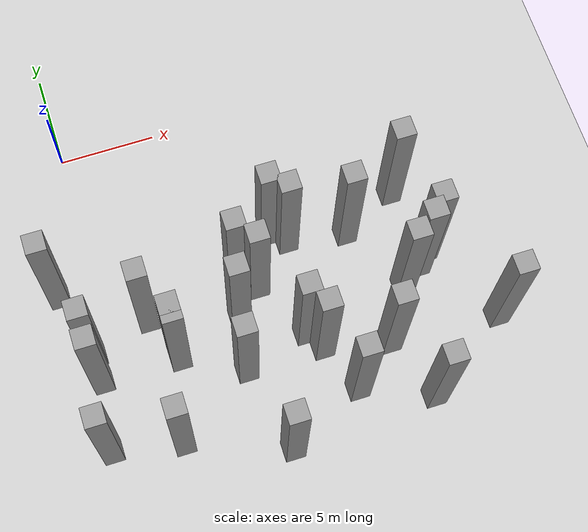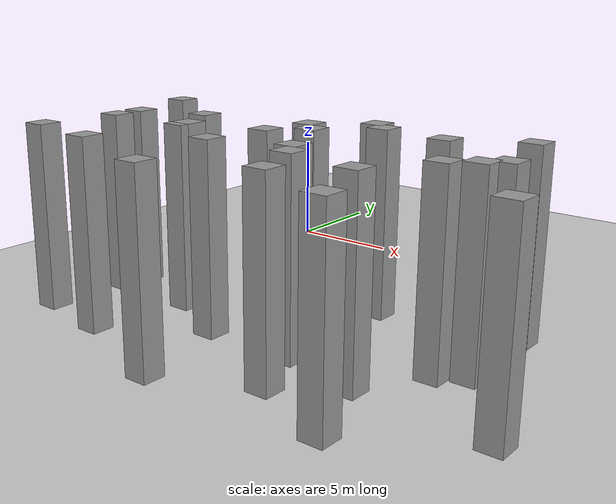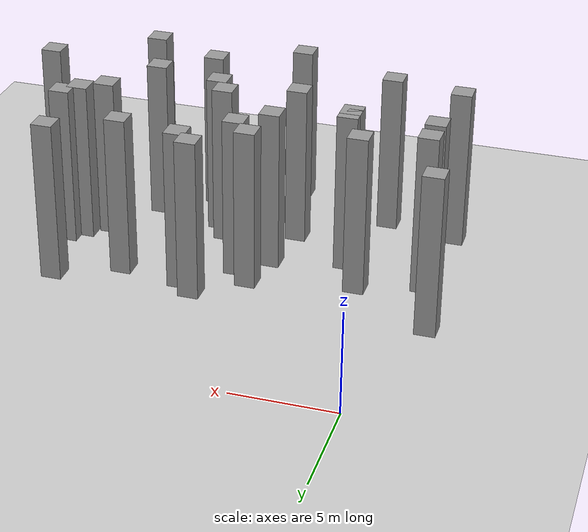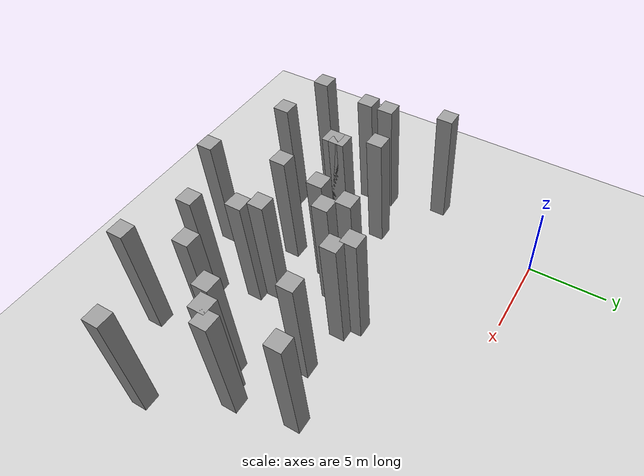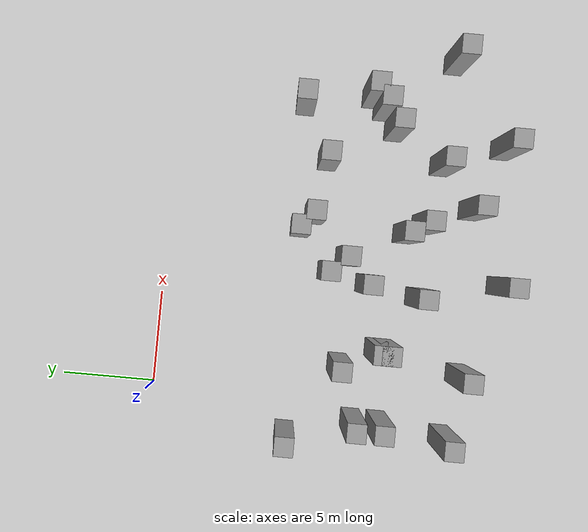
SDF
<sdf version="1.7">
 <world name="default">
  <model name="ground_plane">
   <static>1</static>
   <link name="link">
    <collision name="collision">
     <geometry><plane><normal>0 0 1</normal><size>100 100</size></plane></geometry>
     <surface>
      <contact><collide_bitmask>65535</collide_bitmask></contact>
      <friction><ode><mu>100</mu><mu2>50</mu2></ode></friction>
     </surface>
    </collision>
    <visual name="visual">
     <cast_shadows>0</cast_shadows>
     <geometry><plane><normal>0 0 1</normal><size>100 100</size></plane></geometry>
     <material>
      <script><uri>file://media/materials/scripts/gazebo.material</uri><name>Gazebo/Grey</name></script>
     </material>
    </visual>
   </link>
  </model>
  <model name="unit_box_static95_clone_25">
   <link name="link">
    <inertial>
     <mass>1</mass>
     <inertia>
      <ixx>0.166667</ixx>
      <ixy>0</ixy>
      <ixz>0</ixz>
      <iyy>0.166667</iyy>
      <iyz>0</iyz>
      <izz>0.166667</izz>
     </inertia>
    </inertial>
    <visual name="visual">
     <geometry><box><size>1 1 8</size></box></geometry>
     <material>
      <script><name>Gazebo/Grey</name><uri>file://media/materials/scripts/gazebo.material</uri></script>
      <shader type="pixel"/>
     </material>
    </visual>
    <collision name="collision">
     <geometry><box><size>1 1 8</size></box></geometry>
     <surface>
      <friction>
       <ode><mu>1</mu><mu2>1</mu2><fdir1>0 0 0</fdir1><slip1>0</slip1><slip2>0</slip2></ode>
       <torsional>
        <coefficient>1</coefficient>
        <patch_radius>0</patch_radius>
        <surface_radius>0</surface_radius>
        <use_patch_radius>1</use_patch_radius>
        <ode><slip>0</slip></ode>
       </torsional>
      </friction>
      <bounce><restitution_coefficient>0</restitution_coefficient><threshold>1e+06</threshold></bounce>
      <contact>
       <collide_without_contact>0</collide_without_contact>
       <collide_without_contact_bitmask>1</collide_without_contact_bitmask>
       <collide_bitmask>1</collide_bitmask>
       <ode>
        <soft_cfm>0</soft_cfm>
        <soft_erp>0.2</soft_erp>
        <kp>1e+13</kp>
        <kd>1</kd>
        <max_vel>0.01</max_vel>
        <min_depth>0</min_depth>
       </ode>
       <bullet>
        <split_impulse>1</split_impulse>
        <split_impulse_penetration_threshold>-0.01</split_impulse_penetration_threshold>
        <soft_cfm>0</soft_cfm>
        <soft_erp>0.2</soft_erp>
        <kp>1e+13</kp>
        <kd>1</kd>
       </bullet>
      </contact>
     </surface>
    </collision>
   </link>
   <static>1</static>
   <pose>16 -7 4 0 -0 0</pose>
  </model>
  <model name="unit_box_static95_clone_26">
   <link name="link">
    <inertial>
     <mass>1</mass>
     <inertia>
      <ixx>0.166667</ixx>
      <ixy>0</ixy>
      <ixz>0</ixz>
      <iyy>0.166667</iyy>
      <iyz>0</iyz>
      <izz>0.166667</izz>
     </inertia>
    </inertial>
    <visual name="visual">
     <geometry><box><size>1 1 8</size></box></geometry>
     <material>
      <script><name>Gazebo/Grey</name><uri>file://media/materials/scripts/gazebo.material</uri></script>
      <shader type="pixel"/>
     </material>
    </visual>
    <collision name="collision">
     <geometry><box><size>1 1 8</size></box></geometry>
     <surface>
      <friction>
       <ode><mu>1</mu><mu2>1</mu2><fdir1>0 0 0</fdir1><slip1>0</slip1><slip2>0</slip2></ode>
       <torsional>
        <coefficient>1</coefficient>
        <patch_radius>0</patch_radius>
        <surface_radius>0</surface_radius>
        <use_patch_radius>1</use_patch_radius>
        <ode><slip>0</slip></ode>
       </torsional>
      </friction>
      <bounce><restitution_coefficient>0</restitution_coefficient><threshold>1e+06</threshold></bounce>
      <contact>
       <collide_without_contact>0</collide_without_contact>
       <collide_without_contact_bitmask>1</collide_without_contact_bitmask>
       <collide_bitmask>1</collide_bitmask>
       <ode>
        <soft_cfm>0</soft_cfm>
        <soft_erp>0.2</soft_erp>
        <kp>1e+13</kp>
        <kd>1</kd>
        <max_vel>0.01</max_vel>
        <min_depth>0</min_depth>
       </ode>
       <bullet>
        <split_impulse>1</split_impulse>
        <split_impulse_penetration_threshold>-0.01</split_impulse_penetration_threshold>
        <soft_cfm>0</soft_cfm>
        <soft_erp>0.2</soft_erp>
        <kp>1e+13</kp>
        <kd>1</kd>
       </bullet>
      </contact>
     </surface>
    </collision>
   </link>
   <static>1</static>
   <pose>15 -12 4 0 -0 0</pose>
  </model>
  <model name="unit_box_static95_clone_27">
   <link name="link">
    <inertial>
     <mass>1</mass>
     <inertia>
      <ixx>0.166667</ixx>
      <ixy>0</ixy>
      <ixz>0</ixz>
      <iyy>0.166667</iyy>
      <iyz>0</iyz>
      <izz>0.166667</izz>
     </inertia>
    </inertial>
    <visual name="visual">
     <geometry><box><size>1 1 8</size></box></geometry>
     <material>
      <script><name>Gazebo/Grey</name><uri>file://media/materials/scripts/gazebo.material</uri></script>
      <shader type="pixel"/>
     </material>
    </visual>
    <collision name="collision">
     <geometry><box><size>1 1 8</size></box></geometry>
     <surface>
      <friction>
       <ode><mu>1</mu><mu2>1</mu2><fdir1>0 0 0</fdir1><slip1>0</slip1><slip2>0</slip2></ode>
       <torsional>
        <coefficient>1</coefficient>
        <patch_radius>0</patch_radius>
        <surface_radius>0</surface_radius>
        <use_patch_radius>1</use_patch_radius>
        <ode><slip>0</slip></ode>
       </torsional>
      </friction>
      <bounce><restitution_coefficient>0</restitution_coefficient><threshold>1e+06</threshold></bounce>
      <contact>
       <collide_without_contact>0</collide_without_contact>
       <collide_without_contact_bitmask>1</collide_without_contact_bitmask>
       <collide_bitmask>1</collide_bitmask>
       <ode>
        <soft_cfm>0</soft_cfm>
        <soft_erp>0.2</soft_erp>
        <kp>1e+13</kp>
        <kd>1</kd>
        <max_vel>0.01</max_vel>
        <min_depth>0</min_depth>
       </ode>
       <bullet>
        <split_impulse>1</split_impulse>
        <split_impulse_penetration_threshold>-0.01</split_impulse_penetration_threshold>
        <soft_cfm>0</soft_cfm>
        <soft_erp>0.2</soft_erp>
        <kp>1e+13</kp>
        <kd>1</kd>
       </bullet>
      </contact>
     </surface>
    </collision>
   </link>
   <static>1</static>
   <pose>10 -14 4 0 -0 0</pose>
  </model>
  <model name="unit_box_static95_clone_28">
   <link name="link">
    <inertial>
     <mass>1</mass>
     <inertia>
      <ixx>0.166667</ixx>
      <ixy>0</ixy>
      <ixz>0</ixz>
      <iyy>0.166667</iyy>
      <iyz>0</iyz>
      <izz>0.166667</izz>
     </inertia>
    </inertial>
    <visual name="visual">
     <geometry><box><size>1 1 8</size></box></geometry>
     <material>
      <script><name>Gazebo/Grey</name><uri>file://media/materials/scripts/gazebo.material</uri></script>
      <shader type="pixel"/>
     </material>
    </visual>
    <collision name="collision">
     <geometry><box><size>1 1 8</size></box></geometry>
     <surface>
      <friction>
       <ode><mu>1</mu><mu2>1</mu2><fdir1>0 0 0</fdir1><slip1>0</slip1><slip2>0</slip2></ode>
       <torsional>
        <coefficient>1</coefficient>
        <patch_radius>0</patch_radius>
        <surface_radius>0</surface_radius>
        <use_patch_radius>1</use_patch_radius>
        <ode><slip>0</slip></ode>
       </torsional>
      </friction>
      <bounce><restitution_coefficient>0</restitution_coefficient><threshold>1e+06</threshold></bounce>
      <contact>
       <collide_without_contact>0</collide_without_contact>
       <collide_without_contact_bitmask>1</collide_without_contact_bitmask>
       <collide_bitmask>1</collide_bitmask>
       <ode>
        <soft_cfm>0</soft_cfm>
        <soft_erp>0.2</soft_erp>
        <kp>1e+13</kp>
        <kd>1</kd>
        <max_vel>0.01</max_vel>
        <min_depth>0</min_depth>
       </ode>
       <bullet>
        <split_impulse>1</split_impulse>
        <split_impulse_penetration_threshold>-0.01</split_impulse_penetration_threshold>
        <soft_cfm>0</soft_cfm>
        <soft_erp>0.2</soft_erp>
        <kp>1e+13</kp>
        <kd>1</kd>
       </bullet>
      </contact>
     </surface>
    </collision>
   </link>
   <static>1</static>
   <pose>6 -14 4 0 -0 0</pose>
  </model>
  <model name="unit_box_static95_clone_29">
   <link name="link">
    <inertial>
     <mass>1</mass>
     <inertia>
      <ixx>0.166667</ixx>
      <ixy>0</ixy>
      <ixz>0</ixz>
      <iyy>0.166667</iyy>
      <iyz>0</iyz>
      <izz>0.166667</izz>
     </inertia>
    </inertial>
    <visual name="visual">
     <geometry><box><size>1 1 8</size></box></geometry>
     <material>
      <script><name>Gazebo/Grey</name><uri>file://media/materials/scripts/gazebo.material</uri></script>
      <shader type="pixel"/>
     </material>
    </visual>
    <collision name="collision">
     <geometry><box><size>1 1 8</size></box></geometry>
     <surface>
      <friction>
       <ode><mu>1</mu><mu2>1</mu2><fdir1>0 0 0</fdir1><slip1>0</slip1><slip2>0</slip2></ode>
       <torsional>
        <coefficient>1</coefficient>
        <patch_radius>0</patch_radius>
        <surface_radius>0</surface_radius>
        <use_patch_radius>1</use_patch_radius>
        <ode><slip>0</slip></ode>
       </torsional>
      </friction>
      <bounce><restitution_coefficient>0</restitution_coefficient><threshold>1e+06</threshold></bounce>
      <contact>
       <collide_without_contact>0</collide_without_contact>
       <collide_without_contact_bitmask>1</collide_without_contact_bitmask>
       <collide_bitmask>1</collide_bitmask>
       <ode>
        <soft_cfm>0</soft_cfm>
        <soft_erp>0.2</soft_erp>
        <kp>1e+13</kp>
        <kd>1</kd>
        <max_vel>0.01</max_vel>
        <min_depth>0</min_depth>
       </ode>
       <bullet>
        <split_impulse>1</split_impulse>
        <split_impulse_penetration_threshold>-0.01</split_impulse_penetration_threshold>
        <soft_cfm>0</soft_cfm>
        <soft_erp>0.2</soft_erp>
        <kp>1e+13</kp>
        <kd>1</kd>
       </bullet>
      </contact>
     </surface>
    </collision>
   </link>
   <static>1</static>
   <pose>3 -12.4205 4 0 -0 0</pose>
  </model>
  <model name="unit_box_static95_clone_30">
   <link name="link">
    <inertial>
     <mass>1</mass>
     <inertia>
      <ixx>0.166667</ixx>
      <ixy>0</ixy>
      <ixz>0</ixz>
      <iyy>0.166667</iyy>
      <iyz>0</iyz>
      <izz>0.166667</izz>
     </inertia>
    </inertial>
    <visual name="visual">
     <geometry><box><size>1 1 8</size></box></geometry>
     <material>
      <script><name>Gazebo/Grey</name><uri>file://media/materials/scripts/gazebo.material</uri></script>
      <shader type="pixel"/>
     </material>
    </visual>
    <collision name="collision">
     <geometry><box><size>1 1 8</size></box></geometry>
     <surface>
      <friction>
       <ode><mu>1</mu><mu2>1</mu2><fdir1>0 0 0</fdir1><slip1>0</slip1><slip2>0</slip2></ode>
       <torsional>
        <coefficient>1</coefficient>
        <patch_radius>0</patch_radius>
        <surface_radius>0</surface_radius>
        <use_patch_radius>1</use_patch_radius>
        <ode><slip>0</slip></ode>
       </torsional>
      </friction>
      <bounce><restitution_coefficient>0</restitution_coefficient><threshold>1e+06</threshold></bounce>
      <contact>
       <collide_without_contact>0</collide_without_contact>
       <collide_without_contact_bitmask>1</collide_without_contact_bitmask>
       <collide_bitmask>1</collide_bitmask>
       <ode>
        <soft_cfm>0</soft_cfm>
        <soft_erp>0.2</soft_erp>
        <kp>1e+13</kp>
        <kd>1</kd>
        <max_vel>0.01</max_vel>
        <min_depth>0</min_depth>
       </ode>
       <bullet>
        <split_impulse>1</split_impulse>
        <split_impulse_penetration_threshold>-0.01</split_impulse_penetration_threshold>
        <soft_cfm>0</soft_cfm>
        <soft_erp>0.2</soft_erp>
        <kp>1e+13</kp>
        <kd>1</kd>
       </bullet>
      </contact>
     </surface>
    </collision>
   </link>
   <static>1</static>
   <pose>-1 -11 4 0 -0 0</pose>
  </model>
  <model name="unit_box_static95_clone_57">
   <link name="link">
    <inertial>
     <mass>1</mass>
     <inertia>
      <ixx>0.166667</ixx>
      <ixy>0</ixy>
      <ixz>0</ixz>
      <iyy>0.166667</iyy>
      <iyz>0</iyz>
      <izz>0.166667</izz>
     </inertia>
    </inertial>
    <visual name="visual">
     <geometry><box><size>1 1 8</size></box></geometry>
     <material>
      <script><name>Gazebo/Grey</name><uri>file://media/materials/scripts/gazebo.material</uri></script>
      <shader type="pixel"/>
     </material>
    </visual>
    <collision name="collision">
     <geometry><box><size>1 1 8</size></box></geometry>
     <surface>
      <friction>
       <ode><mu>1</mu><mu2>1</mu2><fdir1>0 0 0</fdir1><slip1>0</slip1><slip2>0</slip2></ode>
       <torsional>
        <coefficient>1</coefficient>
        <patch_radius>0</patch_radius>
        <surface_radius>0</surface_radius>
        <use_patch_radius>1</use_patch_radius>
        <ode><slip>0</slip></ode>
       </torsional>
      </friction>
      <bounce><restitution_coefficient>0</restitution_coefficient><threshold>1e+06</threshold></bounce>
      <contact>
       <collide_without_contact>0</collide_without_contact>
       <collide_without_contact_bitmask>1</collide_without_contact_bitmask>
       <collide_bitmask>1</collide_bitmask>
       <ode>
        <soft_cfm>0</soft_cfm>
        <soft_erp>0.2</soft_erp>
        <kp>1e+13</kp>
        <kd>1</kd>
        <max_vel>0.01</max_vel>
        <min_depth>0</min_depth>
       </ode>
       <bullet>
        <split_impulse>1</split_impulse>
        <split_impulse_penetration_threshold>-0.01</split_impulse_penetration_threshold>
        <soft_cfm>0</soft_cfm>
        <soft_erp>0.2</soft_erp>
        <kp>1e+13</kp>
        <kd>1</kd>
       </bullet>
      </contact>
     </surface>
    </collision>
   </link>
   <static>1</static>
   <pose>7 -9 4 0 -0 0</pose>
  </model>
  <model name="unit_box_static95_clone_58">
   <link name="link">
    <inertial>
     <mass>1</mass>
     <inertia>
      <ixx>0.166667</ixx>
      <ixy>0</ixy>
      <ixz>0</ixz>
      <iyy>0.166667</iyy>
      <iyz>0</iyz>
      <izz>0.166667</izz>
     </inertia>
    </inertial>
    <visual name="visual">
     <geometry><box><size>1 1 8</size></box></geometry>
     <material>
      <script><name>Gazebo/Grey</name><uri>file://media/materials/scripts/gazebo.material</uri></script>
      <shader type="pixel"/>
     </material>
    </visual>
    <collision name="collision">
     <geometry><box><size>1 1 8</size></box></geometry>
     <surface>
      <friction>
       <ode><mu>1</mu><mu2>1</mu2><fdir1>0 0 0</fdir1><slip1>0</slip1><slip2>0</slip2></ode>
       <torsional>
        <coefficient>1</coefficient>
        <patch_radius>0</patch_radius>
        <surface_radius>0</surface_radius>
        <use_patch_radius>1</use_patch_radius>
        <ode><slip>0</slip></ode>
       </torsional>
      </friction>
      <bounce><restitution_coefficient>0</restitution_coefficient><threshold>1e+06</threshold></bounce>
      <contact>
       <collide_without_contact>0</collide_without_contact>
       <collide_without_contact_bitmask>1</collide_without_contact_bitmask>
       <collide_bitmask>1</collide_bitmask>
       <ode>
        <soft_cfm>0</soft_cfm>
        <soft_erp>0.2</soft_erp>
        <kp>1e+13</kp>
        <kd>1</kd>
        <max_vel>0.01</max_vel>
        <min_depth>0</min_depth>
       </ode>
       <bullet>
        <split_impulse>1</split_impulse>
        <split_impulse_penetration_threshold>-0.01</split_impulse_penetration_threshold>
        <soft_cfm>0</soft_cfm>
        <soft_erp>0.2</soft_erp>
        <kp>1e+13</kp>
        <kd>1</kd>
       </bullet>
      </contact>
     </surface>
    </collision>
   </link>
   <static>1</static>
   <pose>2 -10 4 0 -0 0</pose>
  </model>
  <model name="unit_box_static95_clone_59">
   <link name="link">
    <inertial>
     <mass>1</mass>
     <inertia>
      <ixx>0.166667</ixx>
      <ixy>0</ixy>
      <ixz>0</ixz>
      <iyy>0.166667</iyy>
      <iyz>0</iyz>
      <izz>0.166667</izz>
     </inertia>
    </inertial>
    <visual name="visual">
     <geometry><box><size>1 1 8</size></box></geometry>
     <material>
      <script><name>Gazebo/Grey</name><uri>file://media/materials/scripts/gazebo.material</uri></script>
      <shader type="pixel"/>
     </material>
    </visual>
    <collision name="collision">
     <geometry><box><size>1 1 8</size></box></geometry>
     <surface>
      <friction>
       <ode><mu>1</mu><mu2>1</mu2><fdir1>0 0 0</fdir1><slip1>0</slip1><slip2>0</slip2></ode>
       <torsional>
        <coefficient>1</coefficient>
        <patch_radius>0</patch_radius>
        <surface_radius>0</surface_radius>
        <use_patch_radius>1</use_patch_radius>
        <ode><slip>0</slip></ode>
       </torsional>
      </friction>
      <bounce><restitution_coefficient>0</restitution_coefficient><threshold>1e+06</threshold></bounce>
      <contact>
       <collide_without_contact>0</collide_without_contact>
       <collide_without_contact_bitmask>1</collide_without_contact_bitmask>
       <collide_bitmask>1</collide_bitmask>
       <ode>
        <soft_cfm>0</soft_cfm>
        <soft_erp>0.2</soft_erp>
        <kp>1e+13</kp>
        <kd>1</kd>
        <max_vel>0.01</max_vel>
        <min_depth>0</min_depth>
       </ode>
       <bullet>
        <split_impulse>1</split_impulse>
        <split_impulse_penetration_threshold>-0.01</split_impulse_penetration_threshold>
        <soft_cfm>0</soft_cfm>
        <soft_erp>0.2</soft_erp>
        <kp>1e+13</kp>
        <kd>1</kd>
       </bullet>
      </contact>
     </surface>
    </collision>
   </link>
   <static>1</static>
   <pose>-2 -7.41636 4 0 -0 0</pose>
  </model>
  <model name="unit_box_static95_clone_64">
   <link name="link">
    <inertial>
     <mass>1</mass>
     <inertia>
      <ixx>0.166667</ixx>
      <ixy>0</ixy>
      <ixz>0</ixz>
      <iyy>0.166667</iyy>
      <iyz>0</iyz>
      <izz>0.166667</izz>
     </inertia>
    </inertial>
    <visual name="visual">
     <geometry><box><size>1 1 8</size></box></geometry>
     <material>
      <script><name>Gazebo/Grey</name><uri>file://media/materials/scripts/gazebo.material</uri></script>
      <shader type="pixel"/>
     </material>
    </visual>
    <collision name="collision">
     <geometry><box><size>1 1 8</size></box></geometry>
     <surface>
      <friction>
       <ode><mu>1</mu><mu2>1</mu2><fdir1>0 0 0</fdir1><slip1>0</slip1><slip2>0</slip2></ode>
       <torsional>
        <coefficient>1</coefficient>
        <patch_radius>0</patch_radius>
        <surface_radius>0</surface_radius>
        <use_patch_radius>1</use_patch_radius>
        <ode><slip>0</slip></ode>
       </torsional>
      </friction>
      <bounce><restitution_coefficient>0</restitution_coefficient><threshold>1e+06</threshold></bounce>
      <contact>
       <collide_without_contact>0</collide_without_contact>
       <collide_without_contact_bitmask>1</collide_without_contact_bitmask>
       <collide_bitmask>1</collide_bitmask>
       <ode>
        <soft_cfm>0</soft_cfm>
        <soft_erp>0.2</soft_erp>
        <kp>1e+13</kp>
        <kd>1</kd>
        <max_vel>0.01</max_vel>
        <min_depth>0</min_depth>
       </ode>
       <bullet>
        <split_impulse>1</split_impulse>
        <split_impulse_penetration_threshold>-0.01</split_impulse_penetration_threshold>
        <soft_cfm>0</soft_cfm>
        <soft_erp>0.2</soft_erp>
        <kp>1e+13</kp>
        <kd>1</kd>
       </bullet>
      </contact>
     </surface>
    </collision>
   </link>
   <static>1</static>
   <pose>-1.46309 -15.9685 4 0 -0 0</pose>
  </model>
  <model name="unit_box_static95_clone_65">
   <link name="link">
    <inertial>
     <mass>1</mass>
     <inertia>
      <ixx>0.166667</ixx>
      <ixy>0</ixy>
      <ixz>0</ixz>
      <iyy>0.166667</iyy>
      <iyz>0</iyz>
      <izz>0.166667</izz>
     </inertia>
    </inertial>
    <visual name="visual">
     <geometry><box><size>1 1 8</size></box></geometry>
     <material>
      <script><name>Gazebo/Grey</name><uri>file://media/materials/scripts/gazebo.material</uri></script>
      <shader type="pixel"/>
     </material>
    </visual>
    <collision name="collision">
     <geometry><box><size>1 1 8</size></box></geometry>
     <surface>
      <friction>
       <ode><mu>1</mu><mu2>1</mu2><fdir1>0 0 0</fdir1><slip1>0</slip1><slip2>0</slip2></ode>
       <torsional>
        <coefficient>1</coefficient>
        <patch_radius>0</patch_radius>
        <surface_radius>0</surface_radius>
        <use_patch_radius>1</use_patch_radius>
        <ode><slip>0</slip></ode>
       </torsional>
      </friction>
      <bounce><restitution_coefficient>0</restitution_coefficient><threshold>1e+06</threshold></bounce>
      <contact>
       <collide_without_contact>0</collide_without_contact>
       <collide_without_contact_bitmask>1</collide_without_contact_bitmask>
       <collide_bitmask>1</collide_bitmask>
       <ode>
        <soft_cfm>0</soft_cfm>
        <soft_erp>0.2</soft_erp>
        <kp>1e+13</kp>
        <kd>1</kd>
        <max_vel>0.01</max_vel>
        <min_depth>0</min_depth>
       </ode>
       <bullet>
        <split_impulse>1</split_impulse>
        <split_impulse_penetration_threshold>-0.01</split_impulse_penetration_threshold>
        <soft_cfm>0</soft_cfm>
        <soft_erp>0.2</soft_erp>
        <kp>1e+13</kp>
        <kd>1</kd>
       </bullet>
      </contact>
     </surface>
    </collision>
   </link>
   <static>1</static>
   <pose>2 -16.6149 4 0 -0 0</pose>
  </model>
  <model name="unit_box_static95_clone_66">
   <link name="link">
    <inertial>
     <mass>1</mass>
     <inertia>
      <ixx>0.166667</ixx>
      <ixy>0</ixy>
      <ixz>0</ixz>
      <iyy>0.166667</iyy>
      <iyz>0</iyz>
      <izz>0.166667</izz>
     </inertia>
    </inertial>
    <visual name="visual">
     <geometry><box><size>1 1 8</size></box></geometry>
     <material>
      <script><name>Gazebo/Grey</name><uri>file://media/materials/scripts/gazebo.material</uri></script>
      <shader type="pixel"/>
     </material>
    </visual>
    <collision name="collision">
     <geometry><box><size>1 1 8</size></box></geometry>
     <surface>
      <friction>
       <ode><mu>1</mu><mu2>1</mu2><fdir1>0 0 0</fdir1><slip1>0</slip1><slip2>0</slip2></ode>
       <torsional>
        <coefficient>1</coefficient>
        <patch_radius>0</patch_radius>
        <surface_radius>0</surface_radius>
        <use_patch_radius>1</use_patch_radius>
        <ode><slip>0</slip></ode>
       </torsional>
      </friction>
      <bounce><restitution_coefficient>0</restitution_coefficient><threshold>1e+06</threshold></bounce>
      <contact>
       <collide_without_contact>0</collide_without_contact>
       <collide_without_contact_bitmask>1</collide_without_contact_bitmask>
       <collide_bitmask>1</collide_bitmask>
       <ode>
        <soft_cfm>0</soft_cfm>
        <soft_erp>0.2</soft_erp>
        <kp>1e+13</kp>
        <kd>1</kd>
        <max_vel>0.01</max_vel>
        <min_depth>0</min_depth>
       </ode>
       <bullet>
        <split_impulse>1</split_impulse>
        <split_impulse_penetration_threshold>-0.01</split_impulse_penetration_threshold>
        <soft_cfm>0</soft_cfm>
        <soft_erp>0.2</soft_erp>
        <kp>1e+13</kp>
        <kd>1</kd>
       </bullet>
      </contact>
     </surface>
    </collision>
   </link>
   <static>1</static>
   <pose>7 -18.4596 4 0 -0 0</pose>
  </model>
  <model name="unit_box_static95_clone_67">
   <link name="link">
    <inertial>
     <mass>1</mass>
     <inertia>
      <ixx>0.166667</ixx>
      <ixy>0</ixy>
      <ixz>0</ixz>
      <iyy>0.166667</iyy>
      <iyz>0</iyz>
      <izz>0.166667</izz>
     </inertia>
    </inertial>
    <visual name="visual">
     <geometry><box><size>1 1 8</size></box></geometry>
     <material>
      <script><name>Gazebo/Grey</name><uri>file://media/materials/scripts/gazebo.material</uri></script>
      <shader type="pixel"/>
     </material>
    </visual>
    <collision name="collision">
     <geometry><box><size>1 1 8</size></box></geometry>
     <surface>
      <friction>
       <ode><mu>1</mu><mu2>1</mu2><fdir1>0 0 0</fdir1><slip1>0</slip1><slip2>0</slip2></ode>
       <torsional>
        <coefficient>1</coefficient>
        <patch_radius>0</patch_radius>
        <surface_radius>0</surface_radius>
        <use_patch_radius>1</use_patch_radius>
        <ode><slip>0</slip></ode>
       </torsional>
      </friction>
      <bounce><restitution_coefficient>0</restitution_coefficient><threshold>1e+06</threshold></bounce>
      <contact>
       <collide_without_contact>0</collide_without_contact>
       <collide_without_contact_bitmask>1</collide_without_contact_bitmask>
       <collide_bitmask>1</collide_bitmask>
       <ode>
        <soft_cfm>0</soft_cfm>
        <soft_erp>0.2</soft_erp>
        <kp>1e+13</kp>
        <kd>1</kd>
        <max_vel>0.01</max_vel>
        <min_depth>0</min_depth>
       </ode>
       <bullet>
        <split_impulse>1</split_impulse>
        <split_impulse_penetration_threshold>-0.01</split_impulse_penetration_threshold>
        <soft_cfm>0</soft_cfm>
        <soft_erp>0.2</soft_erp>
        <kp>1e+13</kp>
        <kd>1</kd>
       </bullet>
      </contact>
     </surface>
    </collision>
   </link>
   <static>1</static>
   <pose>11 -16.5289 4 0 -0 0</pose>
  </model>
  <model name="unit_box_static95_clone_68">
   <link name="link">
    <inertial>
     <mass>1</mass>
     <inertia>
      <ixx>0.166667</ixx>
      <ixy>0</ixy>
      <ixz>0</ixz>
      <iyy>0.166667</iyy>
      <iyz>0</iyz>
      <izz>0.166667</izz>
     </inertia>
    </inertial>
    <visual name="visual">
     <geometry><box><size>1 1 8</size></box></geometry>
     <material>
      <script><name>Gazebo/Grey</name><uri>file://media/materials/scripts/gazebo.material</uri></script>
      <shader type="pixel"/>
     </material>
    </visual>
    <collision name="collision">
     <geometry><box><size>1 1 8</size></box></geometry>
     <surface>
      <friction>
       <ode><mu>1</mu><mu2>1</mu2><fdir1>0 0 0</fdir1><slip1>0</slip1><slip2>0</slip2></ode>
       <torsional>
        <coefficient>1</coefficient>
        <patch_radius>0</patch_radius>
        <surface_radius>0</surface_radius>
        <use_patch_radius>1</use_patch_radius>
        <ode><slip>0</slip></ode>
       </torsional>
      </friction>
      <bounce><restitution_coefficient>0</restitution_coefficient><threshold>1e+06</threshold></bounce>
      <contact>
       <collide_without_contact>0</collide_without_contact>
       <collide_without_contact_bitmask>1</collide_without_contact_bitmask>
       <collide_bitmask>1</collide_bitmask>
       <ode>
        <soft_cfm>0</soft_cfm>
        <soft_erp>0.2</soft_erp>
        <kp>1e+13</kp>
        <kd>1</kd>
        <max_vel>0.01</max_vel>
        <min_depth>0</min_depth>
       </ode>
       <bullet>
        <split_impulse>1</split_impulse>
        <split_impulse_penetration_threshold>-0.01</split_impulse_penetration_threshold>
        <soft_cfm>0</soft_cfm>
        <soft_erp>0.2</soft_erp>
        <kp>1e+13</kp>
        <kd>1</kd>
       </bullet>
      </contact>
     </surface>
    </collision>
   </link>
   <static>1</static>
   <pose>14.513 -18 4 0 -0 0</pose>
  </model>
  <model name="unit_box_static95_clone_69">
   <link name="link">
    <inertial>
     <mass>1</mass>
     <inertia>
      <ixx>0.166667</ixx>
      <ixy>0</ixy>
      <ixz>0</ixz>
      <iyy>0.166667</iyy>
      <iyz>0</iyz>
      <izz>0.166667</izz>
     </inertia>
    </inertial>
    <visual name="visual">
     <geometry><box><size>1 1 8</size></box></geometry>
     <material>
      <script><name>Gazebo/Grey</name><uri>file://media/materials/scripts/gazebo.material</uri></script>
      <shader type="pixel"/>
     </material>
    </visual>
    <collision name="collision">
     <geometry><box><size>1 1 8</size></box></geometry>
     <surface>
      <friction>
       <ode><mu>1</mu><mu2>1</mu2><fdir1>0 0 0</fdir1><slip1>0</slip1><slip2>0</slip2></ode>
       <torsional>
        <coefficient>1</coefficient>
        <patch_radius>0</patch_radius>
        <surface_radius>0</surface_radius>
        <use_patch_radius>1</use_patch_radius>
        <ode><slip>0</slip></ode>
       </torsional>
      </friction>
      <bounce><restitution_coefficient>0</restitution_coefficient><threshold>1e+06</threshold></bounce>
      <contact>
       <collide_without_contact>0</collide_without_contact>
       <collide_without_contact_bitmask>1</collide_without_contact_bitmask>
       <collide_bitmask>1</collide_bitmask>
       <ode>
        <soft_cfm>0</soft_cfm>
        <soft_erp>0.2</soft_erp>
        <kp>1e+13</kp>
        <kd>1</kd>
        <max_vel>0.01</max_vel>
        <min_depth>0</min_depth>
       </ode>
       <bullet>
        <split_impulse>1</split_impulse>
        <split_impulse_penetration_threshold>-0.01</split_impulse_penetration_threshold>
        <soft_cfm>0</soft_cfm>
        <soft_erp>0.2</soft_erp>
        <kp>1e+13</kp>
        <kd>1</kd>
       </bullet>
      </contact>
     </surface>
    </collision>
   </link>
   <static>1</static>
   <pose>19 -15 4 0 -0 0</pose>
  </model>
  <model name="unit_box_static95_clone_84">
   <link name="link">
    <inertial>
     <mass>1</mass>
     <inertia>
      <ixx>0.166667</ixx>
      <ixy>0</ixy>
      <ixz>0</ixz>
      <iyy>0.166667</iyy>
      <iyz>0</iyz>
      <izz>0.166667</izz>
     </inertia>
    </inertial>
    <visual name="visual">
     <geometry><box><size>1 1 8</size></box></geometry>
     <material>
      <script><name>Gazebo/Grey</name><uri>file://media/materials/scripts/gazebo.material</uri></script>
      <shader type="pixel"/>
     </material>
    </visual>
    <collision name="collision">
     <geometry><box><size>1 1 8</size></box></geometry>
     <surface>
      <friction>
       <ode><mu>1</mu><mu2>1</mu2><fdir1>0 0 0</fdir1><slip1>0</slip1><slip2>0</slip2></ode>
       <torsional>
        <coefficient>1</coefficient>
        <patch_radius>0</patch_radius>
        <surface_radius>0</surface_radius>
        <use_patch_radius>1</use_patch_radius>
        <ode><slip>0</slip></ode>
       </torsional>
      </friction>
      <bounce><restitution_coefficient>0</restitution_coefficient><threshold>1e+06</threshold></bounce>
      <contact>
       <collide_without_contact>0</collide_without_contact>
       <collide_without_contact_bitmask>1</collide_without_contact_bitmask>
       <collide_bitmask>1</collide_bitmask>
       <ode>
        <soft_cfm>0</soft_cfm>
        <soft_erp>0.2</soft_erp>
        <kp>1e+13</kp>
        <kd>1</kd>
        <max_vel>0.01</max_vel>
        <min_depth>0</min_depth>
       </ode>
       <bullet>
        <split_impulse>1</split_impulse>
        <split_impulse_penetration_threshold>-0.01</split_impulse_penetration_threshold>
        <soft_cfm>0</soft_cfm>
        <soft_erp>0.2</soft_erp>
        <kp>1e+13</kp>
        <kd>1</kd>
       </bullet>
      </contact>
     </surface>
    </collision>
   </link>
   <static>1</static>
   <pose>-1 -12.415 4 0 -0 0</pose>
  </model>
  <model name="unit_box_static95_clone_85">
   <link name="link">
    <inertial>
     <mass>1</mass>
     <inertia>
      <ixx>0.166667</ixx>
      <ixy>0</ixy>
      <ixz>0</ixz>
      <iyy>0.166667</iyy>
      <iyz>0</iyz>
      <izz>0.166667</izz>
     </inertia>
    </inertial>
    <visual name="visual">
     <geometry><box><size>1 1 8</size></box></geometry>
     <material>
      <script><name>Gazebo/Grey</name><uri>file://media/materials/scripts/gazebo.material</uri></script>
      <shader type="pixel"/>
     </material>
    </visual>
    <collision name="collision">
     <geometry><box><size>1 1 8</size></box></geometry>
     <surface>
      <friction>
       <ode><mu>1</mu><mu2>1</mu2><fdir1>0 0 0</fdir1><slip1>0</slip1><slip2>0</slip2></ode>
       <torsional>
        <coefficient>1</coefficient>
        <patch_radius>0</patch_radius>
        <surface_radius>0</surface_radius>
        <use_patch_radius>1</use_patch_radius>
        <ode><slip>0</slip></ode>
       </torsional>
      </friction>
      <bounce><restitution_coefficient>0</restitution_coefficient><threshold>1e+06</threshold></bounce>
      <contact>
       <collide_without_contact>0</collide_without_contact>
       <collide_without_contact_bitmask>1</collide_without_contact_bitmask>
       <collide_bitmask>1</collide_bitmask>
       <ode>
        <soft_cfm>0</soft_cfm>
        <soft_erp>0.2</soft_erp>
        <kp>1e+13</kp>
        <kd>1</kd>
        <max_vel>0.01</max_vel>
        <min_depth>0</min_depth>
       </ode>
       <bullet>
        <split_impulse>1</split_impulse>
        <split_impulse_penetration_threshold>-0.01</split_impulse_penetration_threshold>
        <soft_cfm>0</soft_cfm>
        <soft_erp>0.2</soft_erp>
        <kp>1e+13</kp>
        <kd>1</kd>
       </bullet>
      </contact>
     </surface>
    </collision>
   </link>
   <static>1</static>
   <pose>3 -12 4 0 -0 0</pose>
  </model>
  <model name="unit_box_static95_clone_86">
   <link name="link">
    <inertial>
     <mass>1</mass>
     <inertia>
      <ixx>0.166667</ixx>
      <ixy>0</ixy>
      <ixz>0</ixz>
      <iyy>0.166667</iyy>
      <iyz>0</iyz>
      <izz>0.166667</izz>
     </inertia>
    </inertial>
    <visual name="visual">
     <geometry><box><size>1 1 8</size></box></geometry>
     <material>
      <script><name>Gazebo/Grey</name><uri>file://media/materials/scripts/gazebo.material</uri></script>
      <shader type="pixel"/>
     </material>
    </visual>
    <collision name="collision">
     <geometry><box><size>1 1 8</size></box></geometry>
     <surface>
      <friction>
       <ode><mu>1</mu><mu2>1</mu2><fdir1>0 0 0</fdir1><slip1>0</slip1><slip2>0</slip2></ode>
       <torsional>
        <coefficient>1</coefficient>
        <patch_radius>0</patch_radius>
        <surface_radius>0</surface_radius>
        <use_patch_radius>1</use_patch_radius>
        <ode><slip>0</slip></ode>
       </torsional>
      </friction>
      <bounce><restitution_coefficient>0</restitution_coefficient><threshold>1e+06</threshold></bounce>
      <contact>
       <collide_without_contact>0</collide_without_contact>
       <collide_without_contact_bitmask>1</collide_without_contact_bitmask>
       <collide_bitmask>1</collide_bitmask>
       <ode>
        <soft_cfm>0</soft_cfm>
        <soft_erp>0.2</soft_erp>
        <kp>1e+13</kp>
        <kd>1</kd>
        <max_vel>0.01</max_vel>
        <min_depth>0</min_depth>
       </ode>
       <bullet>
        <split_impulse>1</split_impulse>
        <split_impulse_penetration_threshold>-0.01</split_impulse_penetration_threshold>
        <soft_cfm>0</soft_cfm>
        <soft_erp>0.2</soft_erp>
        <kp>1e+13</kp>
        <kd>1</kd>
       </bullet>
      </contact>
     </surface>
    </collision>
   </link>
   <static>1</static>
   <pose>10 -8 4 0 -0 0</pose>
  </model>
  <model name="unit_box_static95_clone_103">
   <link name="link">
    <inertial>
     <mass>1</mass>
     <inertia>
      <ixx>0.166667</ixx>
      <ixy>0</ixy>
      <ixz>0</ixz>
      <iyy>0.166667</iyy>
      <iyz>0</iyz>
      <izz>0.166667</izz>
     </inertia>
    </inertial>
    <visual name="visual">
     <geometry><box><size>1 1 8</size></box></geometry>
     <material>
      <script><name>Gazebo/Grey</name><uri>file://media/materials/scripts/gazebo.material</uri></script>
      <shader type="pixel"/>
     </material>
    </visual>
    <collision name="collision">
     <geometry><box><size>1 1 8</size></box></geometry>
     <surface>
      <friction>
       <ode><mu>1</mu><mu2>1</mu2><fdir1>0 0 0</fdir1><slip1>0</slip1><slip2>0</slip2></ode>
       <torsional>
        <coefficient>1</coefficient>
        <patch_radius>0</patch_radius>
        <surface_radius>0</surface_radius>
        <use_patch_radius>1</use_patch_radius>
        <ode><slip>0</slip></ode>
       </torsional>
      </friction>
      <bounce><restitution_coefficient>0</restitution_coefficient><threshold>1e+06</threshold></bounce>
      <contact>
       <collide_without_contact>0</collide_without_contact>
       <collide_without_contact_bitmask>1</collide_without_contact_bitmask>
       <collide_bitmask>1</collide_bitmask>
       <ode>
        <soft_cfm>0</soft_cfm>
        <soft_erp>0.2</soft_erp>
        <kp>1e+13</kp>
        <kd>1</kd>
        <max_vel>0.01</max_vel>
        <min_depth>0</min_depth>
       </ode>
       <bullet>
        <split_impulse>1</split_impulse>
        <split_impulse_penetration_threshold>-0.01</split_impulse_penetration_threshold>
        <soft_cfm>0</soft_cfm>
        <soft_erp>0.2</soft_erp>
        <kp>1e+13</kp>
        <kd>1</kd>
       </bullet>
      </contact>
     </surface>
    </collision>
   </link>
   <static>1</static>
   <pose>13.0425 -8.47043 4 0 -0 0</pose>
  </model>
  <model name="unit_box_static95_clone_117">
   <link name="link">
    <inertial>
     <mass>1</mass>
     <inertia>
      <ixx>0.166667</ixx>
      <ixy>0</ixy>
      <ixz>0</ixz>
      <iyy>0.166667</iyy>
      <iyz>0</iyz>
      <izz>0.166667</izz>
     </inertia>
    </inertial>
    <visual name="visual">
     <geometry><box><size>1 1 8</size></box></geometry>
     <material>
      <script><name>Gazebo/Grey</name><uri>file://media/materials/scripts/gazebo.material</uri></script>
      <shader type="pixel"/>
     </material>
    </visual>
    <collision name="collision">
     <geometry><box><size>1 1 8</size></box></geometry>
     <surface>
      <friction>
       <ode><mu>1</mu><mu2>1</mu2><fdir1>0 0 0</fdir1><slip1>0</slip1><slip2>0</slip2></ode>
       <torsional>
        <coefficient>1</coefficient>
        <patch_radius>0</patch_radius>
        <surface_radius>0</surface_radius>
        <use_patch_radius>1</use_patch_radius>
        <ode><slip>0</slip></ode>
       </torsional>
      </friction>
      <bounce><restitution_coefficient>0</restitution_coefficient><threshold>1e+06</threshold></bounce>
      <contact>
       <collide_without_contact>0</collide_without_contact>
       <collide_without_contact_bitmask>1</collide_without_contact_bitmask>
       <collide_bitmask>1</collide_bitmask>
       <ode>
        <soft_cfm>0</soft_cfm>
        <soft_erp>0.2</soft_erp>
        <kp>1e+13</kp>
        <kd>1</kd>
        <max_vel>0.01</max_vel>
        <min_depth>0</min_depth>
       </ode>
       <bullet>
        <split_impulse>1</split_impulse>
        <split_impulse_penetration_threshold>-0.01</split_impulse_penetration_threshold>
        <soft_cfm>0</soft_cfm>
        <soft_erp>0.2</soft_erp>
        <kp>1e+13</kp>
        <kd>1</kd>
       </bullet>
      </contact>
     </surface>
    </collision>
   </link>
   <static>1</static>
   <pose>9.21617 -7.28954 4 0 -0 0</pose>
  </model>
  <model name="unit_box_static95_clone_118">
   <link name="link">
    <inertial>
     <mass>1</mass>
     <inertia>
      <ixx>0.166667</ixx>
      <ixy>0</ixy>
      <ixz>0</ixz>
      <iyy>0.166667</iyy>
      <iyz>0</iyz>
      <izz>0.166667</izz>
     </inertia>
    </inertial>
    <visual name="visual">
     <geometry><box><size>1 1 8</size></box></geometry>
     <material>
      <script><name>Gazebo/Grey</name><uri>file://media/materials/scripts/gazebo.material</uri></script>
      <shader type="pixel"/>
     </material>
    </visual>
    <collision name="collision">
     <geometry><box><size>1 1 8</size></box></geometry>
     <surface>
      <friction>
       <ode><mu>1</mu><mu2>1</mu2><fdir1>0 0 0</fdir1><slip1>0</slip1><slip2>0</slip2></ode>
       <torsional>
        <coefficient>1</coefficient>
        <patch_radius>0</patch_radius>
        <surface_radius>0</surface_radius>
        <use_patch_radius>1</use_patch_radius>
        <ode><slip>0</slip></ode>
       </torsional>
      </friction>
      <bounce><restitution_coefficient>0</restitution_coefficient><threshold>1e+06</threshold></bounce>
      <contact>
       <collide_without_contact>0</collide_without_contact>
       <collide_without_contact_bitmask>1</collide_without_contact_bitmask>
       <collide_bitmask>1</collide_bitmask>
       <ode>
        <soft_cfm>0</soft_cfm>
        <soft_erp>0.2</soft_erp>
        <kp>1e+13</kp>
        <kd>1</kd>
        <max_vel>0.01</max_vel>
        <min_depth>0</min_depth>
       </ode>
       <bullet>
        <split_impulse>1</split_impulse>
        <split_impulse_penetration_threshold>-0.01</split_impulse_penetration_threshold>
        <soft_cfm>0</soft_cfm>
        <soft_erp>0.2</soft_erp>
        <kp>1e+13</kp>
        <kd>1</kd>
       </bullet>
      </contact>
     </surface>
    </collision>
   </link>
   <static>1</static>
   <pose>9.38289 -12.9973 4 0 -0 0</pose>
  </model>
  <model name="unit_box_static95_clone_119">
   <link name="link">
    <inertial>
     <mass>1</mass>
     <inertia>
      <ixx>0.166667</ixx>
      <ixy>0</ixy>
      <ixz>0</ixz>
      <iyy>0.166667</iyy>
      <iyz>0</iyz>
      <izz>0.166667</izz>
     </inertia>
    </inertial>
    <visual name="visual">
     <geometry><box><size>1 1 8</size></box></geometry>
     <material>
      <script><name>Gazebo/Grey</name><uri>file://media/materials/scripts/gazebo.material</uri></script>
      <shader type="pixel"/>
     </material>
    </visual>
    <collision name="collision">
     <geometry><box><size>1 1 8</size></box></geometry>
     <surface>
      <friction>
       <ode><mu>1</mu><mu2>1</mu2><fdir1>0 0 0</fdir1><slip1>0</slip1><slip2>0</slip2></ode>
       <torsional>
        <coefficient>1</coefficient>
        <patch_radius>0</patch_radius>
        <surface_radius>0</surface_radius>
        <use_patch_radius>1</use_patch_radius>
        <ode><slip>0</slip></ode>
       </torsional>
      </friction>
      <bounce><restitution_coefficient>0</restitution_coefficient><threshold>1e+06</threshold></bounce>
      <contact>
       <collide_without_contact>0</collide_without_contact>
       <collide_without_contact_bitmask>1</collide_without_contact_bitmask>
       <collide_bitmask>1</collide_bitmask>
       <ode>
        <soft_cfm>0</soft_cfm>
        <soft_erp>0.2</soft_erp>
        <kp>1e+13</kp>
        <kd>1</kd>
        <max_vel>0.01</max_vel>
        <min_depth>0</min_depth>
       </ode>
       <bullet>
        <split_impulse>1</split_impulse>
        <split_impulse_penetration_threshold>-0.01</split_impulse_penetration_threshold>
        <soft_cfm>0</soft_cfm>
        <soft_erp>0.2</soft_erp>
        <kp>1e+13</kp>
        <kd>1</kd>
       </bullet>
      </contact>
     </surface>
    </collision>
   </link>
   <static>1</static>
   <pose>7.8495 -9.93054 4 0 -0 0</pose>
  </model>
  <model name="unit_box_static95_clone_120">
   <link name="link">
    <inertial>
     <mass>1</mass>
     <inertia>
      <ixx>0.166667</ixx>
      <ixy>0</ixy>
      <ixz>0</ixz>
      <iyy>0.166667</iyy>
      <iyz>0</iyz>
      <izz>0.166667</izz>
     </inertia>
    </inertial>
    <visual name="visual">
     <geometry><box><size>1 1 8</size></box></geometry>
     <material>
      <script><name>Gazebo/Grey</name><uri>file://media/materials/scripts/gazebo.material</uri></script>
      <shader type="pixel"/>
     </material>
    </visual>
    <collision name="collision">
     <geometry><box><size>1 1 8</size></box></geometry>
     <surface>
      <friction>
       <ode><mu>1</mu><mu2>1</mu2><fdir1>0 0 0</fdir1><slip1>0</slip1><slip2>0</slip2></ode>
       <torsional>
        <coefficient>1</coefficient>
        <patch_radius>0</patch_radius>
        <surface_radius>0</surface_radius>
        <use_patch_radius>1</use_patch_radius>
        <ode><slip>0</slip></ode>
       </torsional>
      </friction>
      <bounce><restitution_coefficient>0</restitution_coefficient><threshold>1e+06</threshold></bounce>
      <contact>
       <collide_without_contact>0</collide_without_contact>
       <collide_without_contact_bitmask>1</collide_without_contact_bitmask>
       <collide_bitmask>1</collide_bitmask>
       <ode>
        <soft_cfm>0</soft_cfm>
        <soft_erp>0.2</soft_erp>
        <kp>1e+13</kp>
        <kd>1</kd>
        <max_vel>0.01</max_vel>
        <min_depth>0</min_depth>
       </ode>
       <bullet>
        <split_impulse>1</split_impulse>
        <split_impulse_penetration_threshold>-0.01</split_impulse_penetration_threshold>
        <soft_cfm>0</soft_cfm>
        <soft_erp>0.2</soft_erp>
        <kp>1e+13</kp>
        <kd>1</kd>
       </bullet>
      </contact>
     </surface>
    </collision>
   </link>
   <static>1</static>
   <pose>6.49423 -11.1719 4 0 -0 0</pose>
  </model>
  <model name="unit_box_static95_clone_121">
   <link name="link">
    <inertial>
     <mass>1</mass>
     <inertia>
      <ixx>0.166667</ixx>
      <ixy>0</ixy>
      <ixz>0</ixz>
      <iyy>0.166667</iyy>
      <iyz>0</iyz>
      <izz>0.166667</izz>
     </inertia>
    </inertial>
    <visual name="visual">
     <geometry><box><size>1 1 8</size></box></geometry>
     <material>
      <script><name>Gazebo/Grey</name><uri>file://media/materials/scripts/gazebo.material</uri></script>
      <shader type="pixel"/>
     </material>
    </visual>
    <collision name="collision">
     <geometry><box><size>1 1 8</size></box></geometry>
     <surface>
      <friction>
       <ode><mu>1</mu><mu2>1</mu2><fdir1>0 0 0</fdir1><slip1>0</slip1><slip2>0</slip2></ode>
       <torsional>
        <coefficient>1</coefficient>
        <patch_radius>0</patch_radius>
        <surface_radius>0</surface_radius>
        <use_patch_radius>1</use_patch_radius>
        <ode><slip>0</slip></ode>
       </torsional>
      </friction>
      <bounce><restitution_coefficient>0</restitution_coefficient><threshold>1e+06</threshold></bounce>
      <contact>
       <collide_without_contact>0</collide_without_contact>
       <collide_without_contact_bitmask>1</collide_without_contact_bitmask>
       <collide_bitmask>1</collide_bitmask>
       <ode>
        <soft_cfm>0</soft_cfm>
        <soft_erp>0.2</soft_erp>
        <kp>1e+13</kp>
        <kd>1</kd>
        <max_vel>0.01</max_vel>
        <min_depth>0</min_depth>
       </ode>
       <bullet>
        <split_impulse>1</split_impulse>
        <split_impulse_penetration_threshold>-0.01</split_impulse_penetration_threshold>
        <soft_cfm>0</soft_cfm>
        <soft_erp>0.2</soft_erp>
        <kp>1e+13</kp>
        <kd>1</kd>
       </bullet>
      </contact>
     </surface>
    </collision>
   </link>
   <static>1</static>
   <pose>16.0774 -11.2865 4 0 -0 0</pose>
  </model>
  <model name="unit_box_static95_clone_122">
   <link name="link">
    <inertial>
     <mass>1</mass>
     <inertia>
      <ixx>0.166667</ixx>
      <ixy>0</ixy>
      <ixz>0</ixz>
      <iyy>0.166667</iyy>
      <iyz>0</iyz>
      <izz>0.166667</izz>
     </inertia>
    </inertial>
    <visual name="visual">
     <geometry><box><size>1 1 8</size></box></geometry>
     <material>
      <script><name>Gazebo/Grey</name><uri>file://media/materials/scripts/gazebo.material</uri></script>
      <shader type="pixel"/>
     </material>
    </visual>
    <collision name="collision">
     <geometry><box><size>1 1 8</size></box></geometry>
     <surface>
      <friction>
       <ode><mu>1</mu><mu2>1</mu2><fdir1>0 0 0</fdir1><slip1>0</slip1><slip2>0</slip2></ode>
       <torsional>
        <coefficient>1</coefficient>
        <patch_radius>0</patch_radius>
        <surface_radius>0</surface_radius>
        <use_patch_radius>1</use_patch_radius>
        <ode><slip>0</slip></ode>
       </torsional>
      </friction>
      <bounce><restitution_coefficient>0</restitution_coefficient><threshold>1e+06</threshold></bounce>
      <contact>
       <collide_without_contact>0</collide_without_contact>
       <collide_without_contact_bitmask>1</collide_without_contact_bitmask>
       <collide_bitmask>1</collide_bitmask>
       <ode>
        <soft_cfm>0</soft_cfm>
        <soft_erp>0.2</soft_erp>
        <kp>1e+13</kp>
        <kd>1</kd>
        <max_vel>0.01</max_vel>
        <min_depth>0</min_depth>
       </ode>
       <bullet>
        <split_impulse>1</split_impulse>
        <split_impulse_penetration_threshold>-0.01</split_impulse_penetration_threshold>
        <soft_cfm>0</soft_cfm>
        <soft_erp>0.2</soft_erp>
        <kp>1e+13</kp>
        <kd>1</kd>
       </bullet>
      </contact>
     </surface>
    </collision>
   </link>
   <static>1</static>
   <pose>16.7269 -10.626 4 0 -0 0</pose>
  </model>
  <model name="unit_box_static95_clone_123">
   <link name="link">
    <inertial>
     <mass>1</mass>
     <inertia>
      <ixx>0.166667</ixx>
      <ixy>0</ixy>
      <ixz>0</ixz>
      <iyy>0.166667</iyy>
      <iyz>0</iyz>
      <izz>0.166667</izz>
     </inertia>
    </inertial>
    <visual name="visual">
     <geometry><box><size>1 1 8</size></box></geometry>
     <material>
      <script><name>Gazebo/Grey</name><uri>file://media/materials/scripts/gazebo.material</uri></script>
      <shader type="pixel"/>
     </material>
    </visual>
    <collision name="collision">
     <geometry><box><size>1 1 8</size></box></geometry>
     <surface>
      <friction>
       <ode><mu>1</mu><mu2>1</mu2><fdir1>0 0 0</fdir1><slip1>0</slip1><slip2>0</slip2></ode>
       <torsional>
        <coefficient>1</coefficient>
        <patch_radius>0</patch_radius>
        <surface_radius>0</surface_radius>
        <use_patch_radius>1</use_patch_radius>
        <ode><slip>0</slip></ode>
       </torsional>
      </friction>
      <bounce><restitution_coefficient>0</restitution_coefficient><threshold>1e+06</threshold></bounce>
      <contact>
       <collide_without_contact>0</collide_without_contact>
       <collide_without_contact_bitmask>1</collide_without_contact_bitmask>
       <collide_bitmask>1</collide_bitmask>
       <ode>
        <soft_cfm>0</soft_cfm>
        <soft_erp>0.2</soft_erp>
        <kp>1e+13</kp>
        <kd>1</kd>
        <max_vel>0.01</max_vel>
        <min_depth>0</min_depth>
       </ode>
       <bullet>
        <split_impulse>1</split_impulse>
        <split_impulse_penetration_threshold>-0.01</split_impulse_penetration_threshold>
        <soft_cfm>0</soft_cfm>
        <soft_erp>0.2</soft_erp>
        <kp>1e+13</kp>
        <kd>1</kd>
       </bullet>
      </contact>
     </surface>
    </collision>
   </link>
   <static>1</static>
   <pose>13.3047 -14.715 4 0 -0 0</pose>
  </model>
 </world>
</sdf>
